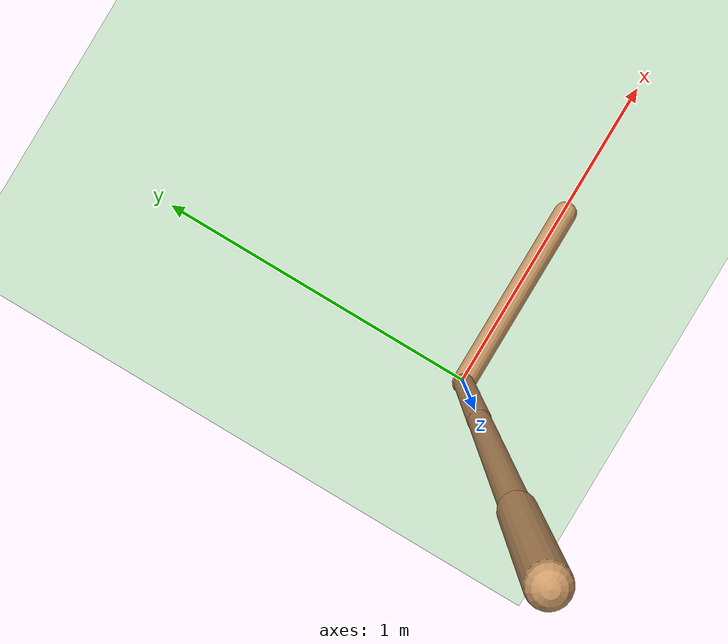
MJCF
<mujoco model="walker2d">
  <compiler angle="degree" inertiafromgeom="true" />
  <default>
    <joint armature="0.01" damping=".1" limited="true" />
    <geom conaffinity="0" condim="3" contype="1" density="1000" friction=".7 .1 .1" rgba="0.8 0.6 .4 1" />
  </default>
  <option integrator="RK4" timestep="0.002" />
  <worldbody>
    <light cutoff="100" diffuse="1 1 1" dir="-0 0 -1.3" directional="true" exponent="1" pos="0 0 1.3" specular=".1 .1 .1" />
    <geom conaffinity="1" condim="3" name="floor" pos="0 0 0" rgba="0.8 0.9 0.8 1" size="40 40 40" type="plane" material="MatPlane" />
    <body name="torso" pos="0 0 3.2339824795722962">
      <camera name="track" mode="trackcom" pos="0 -5 -1.25" xyaxes="1 0 0 0 0 1" />
      <joint armature="0" axis="1 0 0" damping="0" limited="false" name="rootx" pos="0 0 -1.25" stiffness="0" type="slide" />
      <joint armature="0" axis="0 0 1" damping="0" limited="false" name="rootz" pos="0 0 -1.25" ref="1.25" stiffness="0" type="slide" />
      <joint armature="0" axis="0 1 0" damping="0" limited="false" name="rooty" pos="0 0 0" stiffness="0" type="hinge" />
      <geom friction="0.9" name="torso_geom" size="0.034999363124370575 0.36431020498275757" type="capsule" />
      <body name="thigh" pos="0 0 -0.36431020498275757">
        <joint axis="0 -1 0" name="thigh_joint" pos="0 0 0" range="-150 0" type="hinge" />
        <site name="torso_thigh_site" pos="0 0 0" size="0.01" type="sphere" rgba="1 0 0 0.5" />
        <geom friction="0.9" pos="0 0 -0.7912006974220276" name="thigh_geom" size="0.02849540486931801 0.7912006974220276" type="capsule" />
        <body name="leg" pos="0 0 -2.176036834716797">
          <joint axis="0 -1 0" name="leg_joint" pos="0 0 0.5936354398727417" range="-150 0" type="hinge" />
          <site name="thigh_leg_site" pos="0 0 0.25" size="0.01" type="sphere" rgba="1 0 0 0.5" />
          <geom friction="0.9" name="leg_geom" size="0.029641922563314438 0.5936354398727417" type="capsule" />
          <body name="foot" pos="0.5735287070274353 0 -0.6936354398727417">
            <joint axis="0 -1 0" name="foot_joint" pos="-0.5735287070274353 0 0.1" range="-45 45" type="hinge" />
            <site name="leg_foot_site" pos="-0.2 0 0.1" size="0.01" type="sphere" rgba="1 0 0 0.5" />
            <geom friction="0.9" pos="-0.28676435351371765 0 0.1" quat="0.70710678118654757 0 -0.70710678118654746 0" name="foot_geom" size="0.03396197408437729 0.28676435351371765" type="capsule" />
          </body>
        </body>
      </body>

      <body name="thigh_left" pos="0 0 -0.36431020498275757">
        <joint axis="0 -1 0" name="thigh_left_joint" pos="0 0 0" range="-150 0" type="hinge" />
        <site name="torso_thigh_left_site" pos="0 0 0" size="0.01" type="sphere" rgba="1 0 0 0.5" />
        <geom friction="0.9" name="thigh_left_geom" rgba=".7 .3 .6 1" size="0.02849540486931801 0.7912006974220276" pos="0 0 -0.7912006974220276" type="capsule" />
        <body name="leg_left" pos="0 0 -2.176036834716797">
          <joint axis="0 -1 0" name="leg_left_joint" pos="0 0 0.5936354398727417" range="-150 0" type="hinge" />
          <site name="thigh_leg_left_site" pos="0 0 0.25" size="0.01" type="sphere" rgba="1 0 0 0.5" />
          <geom friction="0.9" name="leg_left_geom" rgba=".7 .3 .6 1" size="0.029641922563314438 0.5936354398727417" type="capsule" />
          <body name="foot_left" pos="0.5735287070274353 0 -0.6936354398727417">
            <joint axis="0 -1 0" name="foot_left_joint" pos="-0.5735287070274353 0 0.1" range="-45 45" type="hinge" />
            <site name="leg_foot_left_site" pos="-0.2 0 0.1" size="0.01" type="sphere" rgba="1 0 0 0.5" />
            <geom friction="1.9" name="foot_left_geom" rgba=".7 .3 .6 1" size="0.03396197408437729 0.28676435351371765" pos="-0.28676435351371765 0 0.1" type="capsule" quat="0.70710678118654757 0 -0.70710678118654746 0" />
          </body>
        </body>
      </body>
    </body>
  </worldbody>
  <actuator>

    <motor ctrllimited="true" ctrlrange="-1.0 1.0" gear="114.21254221568074" joint="thigh_joint" />
    <motor ctrllimited="true" ctrlrange="-1.0 1.0" gear="130.3984910243355" joint="leg_joint" />
    <motor ctrllimited="true" ctrlrange="-1.0 1.0" gear="91.8773619086341" joint="foot_joint" />
    <motor ctrllimited="true" ctrlrange="-1.0 1.0" gear="114.21254221568074" joint="thigh_left_joint" />
    <motor ctrllimited="true" ctrlrange="-1.0 1.0" gear="130.3984910243355" joint="leg_left_joint" />
    <motor ctrllimited="true" ctrlrange="-1.0 1.0" gear="91.8773619086341" joint="foot_left_joint" />

  </actuator>
    <asset>
        <texture type="skybox" builtin="gradient" rgb1=".4 .5 .6" rgb2="0 0 0" width="100" height="100" />
        <texture builtin="flat" height="1278" mark="cross" markrgb="1 1 1" name="texgeom" random="0.01" rgb1="0.8 0.6 0.4" rgb2="0.8 0.6 0.4" type="cube" width="127" />
        <texture builtin="checker" height="100" name="texplane" rgb1="0 0 0" rgb2="0.8 0.8 0.8" type="2d" width="100" />
        <material name="MatPlane" reflectance="0.5" shininess="1" specular="1" texrepeat="60 60" texture="texplane" />
        <material name="geom" texture="texgeom" texuniform="true" />
    </asset>

  <sensor>
    <force site="torso_thigh_site" name="torso_thigh_sensor" />
    <force site="thigh_leg_site" name="thigh_leg_sensor" />
    <force site="leg_foot_site" name="leg_foot_sensor" />
    <force site="torso_thigh_left_site" name="torso_thigh_left_sensor" />
    <force site="thigh_leg_left_site" name="thigh_leg_left_sensor" />
    <force site="leg_foot_left_site" name="leg_foot_left_sensor" />
  </sensor>
</mujoco>
